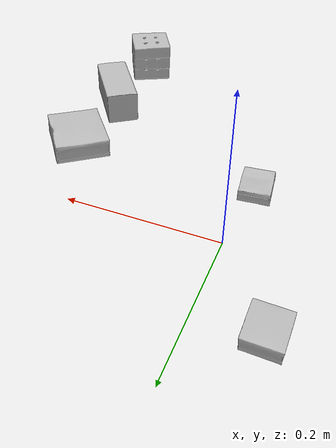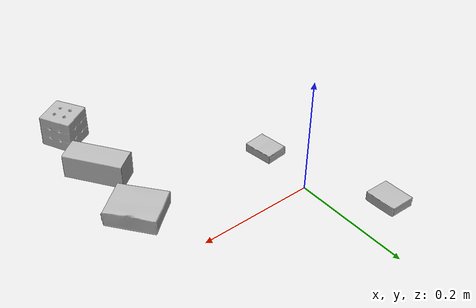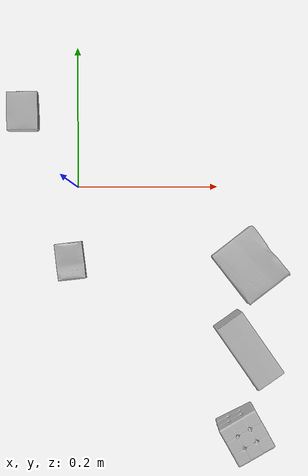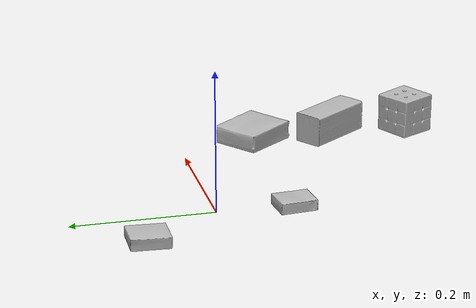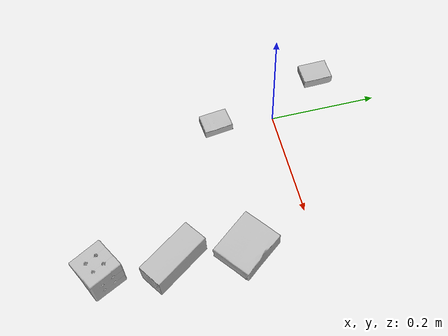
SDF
<sdf version="1.4">
  <world name="default">
    <light name="light1" type="point">
      <pose>0 0 1 0 0 0</pose>
      <diffuse>3 3 3 1</diffuse>
      <specular>3 3 3 1</specular>
    </light>
    <light name="light2" type="point">
      <pose>0 0.5 2 0 0 0</pose>
      <diffuse>1 1 1 1</diffuse>
      <specular>1 1 1 1</specular>
    </light>
    <light name="light3" type="point">
      <pose>0 0.5 2 0 0 0</pose>
      <diffuse>3 3 3 1</diffuse>
      <specular>3 3 3 1</specular>
    </light>
    <scene>
      <ambient>0.7 0.7 0.7</ambient>
    </scene>
    <model name="box1">
      <link name="link_box1">
        <collision name="default">
          <geometry>
            <mesh>
              <uri>model://rubiks_cube/collision_meshes/collision.obj</uri>
              <scale>1.0 1.0 1.0</scale>
            </mesh>
          </geometry>
          <surface>
            <friction>
              <ode>
                <mu>0.5</mu>
                <mu2>0.5</mu2>
              </ode>
            </friction>
          <contact>
        <ode>
            <max_vel>0</max_vel>
            <min_depth>0.0001</min_depth>
            <kp>1e8</kp>
        </ode>
    </contact></surface>
        </collision>
        <visual name="default">
          <geometry>
            <mesh>
              <uri>model://rubiks_cube/visual_meshes/visual.dae</uri>
              <scale>1.0 1.0 1.0</scale>
            </mesh>
          </geometry>
        </visual>
        <inertial>
          <mass>0.16542086005210876</mass>
          <pose>2.6721041649580002e-05 5.256967051536776e-05 -7.264316536748083e-06 -0.054673137900176624 -0.09813866632394339 -0.03445580911338559</pose>
          <inertia>
            <ixx>9.140613e-05</ixx>
            <iyy>9.097988e-05</iyy>
            <izz>9.216359e-05</izz>
            <ixy>0</ixy>
            <ixz>0</ixz>
            <iyz>0</iyz>
          </inertia>
        </inertial>
      </link>
      <pose>0.234034463763237 -0.34697332978248596 0.02867896296083927 -3.2104430736520244e-06 -1.294309910025665e-06 -2.6411910366657803</pose>
    </model>
    <model name="box2">
      <link name="link_box2">
        <collision name="default">
          <geometry>
            <mesh>
              <uri>model://cracker_box/collision_meshes/collision.obj</uri>
              <scale>0.25 0.25 0.25</scale>
            </mesh>
          </geometry>
          <surface>
            <friction>
              <ode>
                <mu>0.5</mu>
                <mu2>0.5</mu2>
              </ode>
            </friction>
          <contact>
        <ode>
            <max_vel>0</max_vel>
            <min_depth>0.0001</min_depth>
            <kp>1e8</kp>
        </ode>
    </contact></surface>
        </collision>
        <visual name="default">
          <geometry>
            <mesh>
              <uri>model://cracker_box/visual_meshes/visual.dae</uri>
              <scale>0.25 0.25 0.25</scale>
            </mesh>
          </geometry>
        </visual>
        <inertial>
          <mass>0.04381135478615761</mass>
          <pose>0.00023660462466068566 6.358561222441494e-05 -0.0004257383698131889 -0.00031620747829542317 -0.011106489600678707 0.002546794302661479</pose>
          <inertia>
            <ixx>6.9647826e-06</ixx>
            <iyy>1.1500225e-05</iyy>
            <izz>1.6411877e-05</izz>
            <ixy>0</ixy>
            <ixz>0</ixz>
            <iyz>0</iyz>
          </inertia>
        </inertial>
      </link>
      <pose>-0.010804533027112484 -0.10630196332931519 0.009096027351915836 -0.014050584394384244 -0.005016541456663128 1.6825270248949928</pose>
    </model>
    <model name="box3">
      <link name="link_box3">
        <collision name="default">
          <geometry>
            <mesh>
              <uri>model://gelatin_box/collision_meshes/collision.obj</uri>
              <scale>1.0 1.0 1.0</scale>
            </mesh>
          </geometry>
          <surface>
            <friction>
              <ode>
                <mu>0.5</mu>
                <mu2>0.5</mu2>
              </ode>
            </friction>
          <contact>
        <ode>
            <max_vel>0</max_vel>
            <min_depth>0.0001</min_depth>
            <kp>1e8</kp>
        </ode>
    </contact></surface>
        </collision>
        <visual name="default">
          <geometry>
            <mesh>
              <uri>model://gelatin_box/visual_meshes/visual.dae</uri>
              <scale>1.0 1.0 1.0</scale>
            </mesh>
          </geometry>
        </visual>
        <inertial>
          <mass>0.23367169499397278</mass>
          <pose>0.0004319618456065655 0.00011156871914863586 -0.0003640321083366871 -0.0010503719733775277 -0.004755817758083372 0.016440561333906818</pose>
          <inertia>
            <ixx>0.00016495313</ixx>
            <iyy>0.00011782518</iyy>
            <izz>0.00025109548</izz>
            <ixy>0</ixy>
            <ixz>0</ixz>
            <iyz>0</iyz>
          </inertia>
        </inertial>
      </link>
      <pose>0.24504637718200684 -0.1128072738647461 0.015168312937021255 0.005596545448066911 -0.007303548906904709 0.6505245807602037</pose>
    </model>
    <model name="box4">
      <link name="link_box4">
        <collision name="default">
          <geometry>
            <mesh>
              <uri>model://wood_block/collision_meshes/collision.obj</uri>
              <scale>0.5 0.5 0.5</scale>
            </mesh>
          </geometry>
          <surface>
            <friction>
              <ode>
                <mu>0.5</mu>
                <mu2>0.5</mu2>
              </ode>
            </friction>
          <contact>
        <ode>
            <max_vel>0</max_vel>
            <min_depth>0.0001</min_depth>
            <kp>1e8</kp>
        </ode>
    </contact></surface>
        </collision>
        <visual name="default">
          <geometry>
            <mesh>
              <uri>model://wood_block/visual_meshes/visual.dae</uri>
              <scale>0.5 0.5 0.5</scale>
            </mesh>
          </geometry>
        </visual>
        <inertial>
          <mass>0.20833587646484375</mass>
          <pose>-2.9066577553749084e-06 -0.000285404734313488 0.00013204291462898254 -0.05220975529367638 -0.0051926946165042134 -0.0068613779519224715</pose>
          <inertia>
            <ixx>6.9696216e-05</ixx>
            <iyy>0.0002201704</iyy>
            <izz>0.00021934687</izz>
            <ixy>0</ixy>
            <ixz>0</ixz>
            <iyz>0</iyz>
          </inertia>
        </inertial>
      </link>
      <pose>0.24043434858322144 -0.23042678833007812 0.0226292721927166 -0.0052083560567927545 0.005718754252214221 -0.96285851504006</pose>
    </model>
    <model name="box5">
      <link name="link_box5">
        <collision name="default">
          <geometry>
            <mesh>
              <uri>model://pudding_box/collision_meshes/collision.obj</uri>
              <scale>0.5 0.5 0.5</scale>
            </mesh>
          </geometry>
          <surface>
            <friction>
              <ode>
                <mu>0.5</mu>
                <mu2>0.5</mu2>
              </ode>
            </friction>
          <contact>
        <ode>
            <max_vel>0</max_vel>
            <min_depth>0.0001</min_depth>
            <kp>1e8</kp>
        </ode>
    </contact></surface>
        </collision>
        <visual name="default">
          <geometry>
            <mesh>
              <uri>model://pudding_box/visual_meshes/visual.dae</uri>
              <scale>0.5 0.5 0.5</scale>
            </mesh>
          </geometry>
        </visual>
        <inertial>
          <mass>0.032720133662223816</mass>
          <pose>0.00024474109522998333 0.0004033942532259971 -0.0002594413817860186 0.005213102275410761 -0.0066037963999523224 0.020079827026921356</pose>
          <inertia>
            <ixx>9.2471055e-06</ixx>
            <iyy>6.221519e-06</iyy>
            <izz>1.3655769e-05</izz>
            <ixy>0</ixy>
            <ixz>0</ixz>
            <iyz>0</iyz>
          </inertia>
        </inertial>
      </link>
      <pose>-0.07766841351985931 0.10740887373685837 0.009862901642918587 0.02234965541949046 -0.011390935643752414 0.00017532326239776475</pose>
    </model>
  <physics type="ode">
      <max_contacts>50</max_contacts>
      <ode>
        <solver>
          <type>quick</type>
          <iters>75</iters>
        </solver>
        <constraints>
          <contact_max_correcting_vel>0</contact_max_correcting_vel>
          <contact_surface_layer>0</contact_surface_layer>
        </constraints>
      </ode>
    </physics></world>
</sdf>
